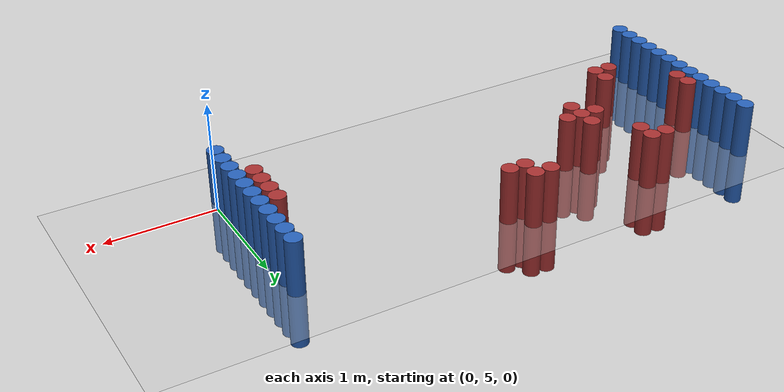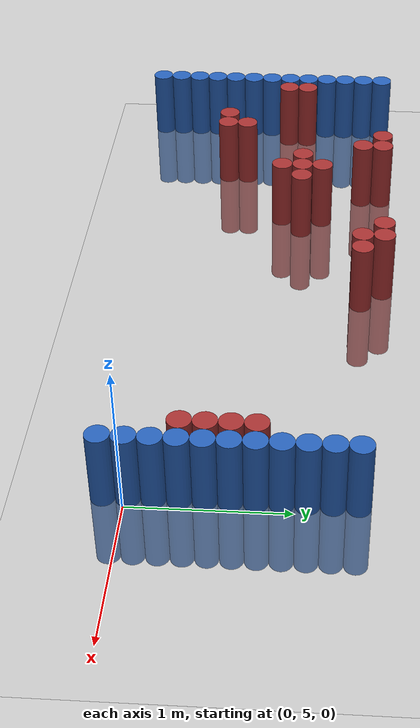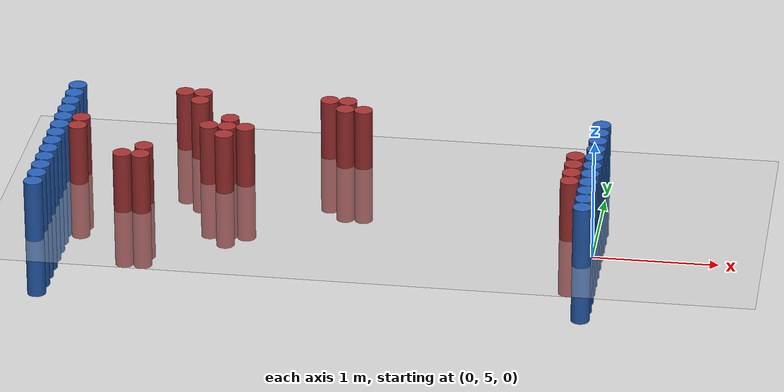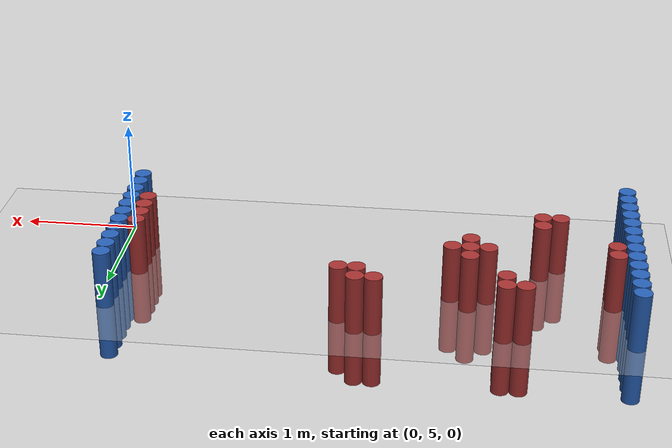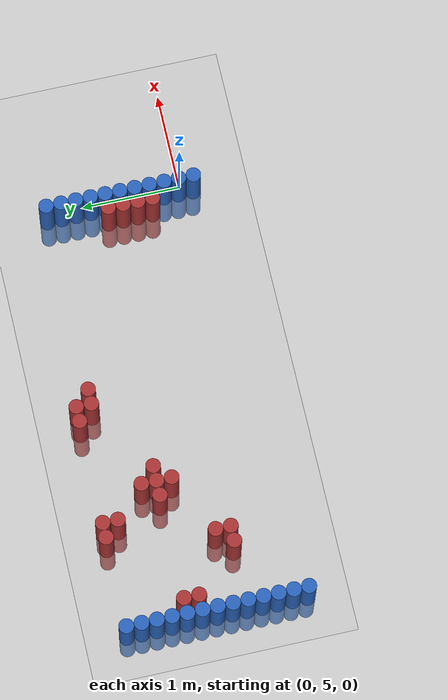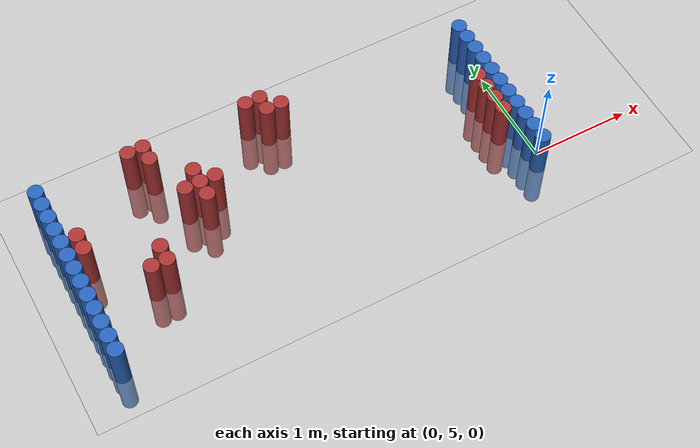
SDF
<sdf version="1.6">
 <world name="default">
  <model name="ground_plane">
   <static>1</static>
   <link name="link">
    <collision name="collision">
     <geometry><plane><normal>0 0 1</normal><size>100 100</size></plane></geometry>
     <surface><friction><ode><mu>100</mu><mu2>50</mu2></ode></friction></surface>
    </collision>
    <visual name="visual">
     <cast_shadows>0</cast_shadows>
     <geometry><plane><normal>0 0 1</normal><size>100 100</size></plane></geometry>
     <material>
      <script><uri>file://media/materials/scripts/gazebo.material</uri><name>Gazebo/Grey</name></script>
     </material>
    </visual>
   </link>
  </model>
  <model name="unit_cylinder_91">
   <static>1</static>
   <pose>-4.425000 4.725000 0.000000 0.000000 0.000000 0.000000</pose>
   <link name="link">
    <inertial>
     <mass>1</mass>
     <inertia><ixx>0.145833</ixx><ixy>0</ixy><ixz>0</ixz><iyy>0.145833</iyy><iyz>0</iyz><izz>0.125</izz></inertia>
    </inertial>
    <collision name="collision">
     <geometry><cylinder><radius>0.075000</radius><length>1</length></cylinder></geometry>
    </collision>
    <visual name="visual">
     <geometry><cylinder><radius>0.075000</radius><length>1</length></cylinder></geometry>
     <material>
      <ambient>0.152000 0.379000 0.720000 1</ambient>
      <diffuse>0.152000 0.379000 0.720000 1</diffuse>
     </material>
     <material>
      <script><name>Gazebo/Grey</name><uri>file://media/materials/scripts/gazebo.material</uri></script>
     </material>
    </visual>
   </link>
  </model>
  <model name="unit_cylinder_92">
   <static>1</static>
   <pose>-0.075000 4.875000 0.000000 0.000000 0.000000 0.000000</pose>
   <link name="link">
    <inertial>
     <mass>1</mass>
     <inertia><ixx>0.145833</ixx><ixy>0</ixy><ixz>0</ixz><iyy>0.145833</iyy><iyz>0</iyz><izz>0.125</izz></inertia>
    </inertial>
    <collision name="collision">
     <geometry><cylinder><radius>0.075000</radius><length>1</length></cylinder></geometry>
    </collision>
    <visual name="visual">
     <geometry><cylinder><radius>0.075000</radius><length>1</length></cylinder></geometry>
     <material>
      <ambient>0.152000 0.379000 0.720000 1</ambient>
      <diffuse>0.152000 0.379000 0.720000 1</diffuse>
     </material>
     <material>
      <script><name>Gazebo/Grey</name><uri>file://media/materials/scripts/gazebo.material</uri></script>
     </material>
    </visual>
   </link>
  </model>
  <model name="unit_cylinder_93">
   <static>1</static>
   <pose>-4.425000 4.875000 0.000000 0.000000 0.000000 0.000000</pose>
   <link name="link">
    <inertial>
     <mass>1</mass>
     <inertia><ixx>0.145833</ixx><ixy>0</ixy><ixz>0</ixz><iyy>0.145833</iyy><iyz>0</iyz><izz>0.125</izz></inertia>
    </inertial>
    <collision name="collision">
     <geometry><cylinder><radius>0.075000</radius><length>1</length></cylinder></geometry>
    </collision>
    <visual name="visual">
     <geometry><cylinder><radius>0.075000</radius><length>1</length></cylinder></geometry>
     <material>
      <ambient>0.152000 0.379000 0.720000 1</ambient>
      <diffuse>0.152000 0.379000 0.720000 1</diffuse>
     </material>
     <material>
      <script><name>Gazebo/Grey</name><uri>file://media/materials/scripts/gazebo.material</uri></script>
     </material>
    </visual>
   </link>
  </model>
  <model name="unit_cylinder_94">
   <static>1</static>
   <pose>-0.075000 5.025000 0.000000 0.000000 0.000000 0.000000</pose>
   <link name="link">
    <inertial>
     <mass>1</mass>
     <inertia><ixx>0.145833</ixx><ixy>0</ixy><ixz>0</ixz><iyy>0.145833</iyy><iyz>0</iyz><izz>0.125</izz></inertia>
    </inertial>
    <collision name="collision">
     <geometry><cylinder><radius>0.075000</radius><length>1</length></cylinder></geometry>
    </collision>
    <visual name="visual">
     <geometry><cylinder><radius>0.075000</radius><length>1</length></cylinder></geometry>
     <material>
      <ambient>0.152000 0.379000 0.720000 1</ambient>
      <diffuse>0.152000 0.379000 0.720000 1</diffuse>
     </material>
     <material>
      <script><name>Gazebo/Grey</name><uri>file://media/materials/scripts/gazebo.material</uri></script>
     </material>
    </visual>
   </link>
  </model>
  <model name="unit_cylinder_95">
   <static>1</static>
   <pose>-4.425000 5.025000 0.000000 0.000000 0.000000 0.000000</pose>
   <link name="link">
    <inertial>
     <mass>1</mass>
     <inertia><ixx>0.145833</ixx><ixy>0</ixy><ixz>0</ixz><iyy>0.145833</iyy><iyz>0</iyz><izz>0.125</izz></inertia>
    </inertial>
    <collision name="collision">
     <geometry><cylinder><radius>0.075000</radius><length>1</length></cylinder></geometry>
    </collision>
    <visual name="visual">
     <geometry><cylinder><radius>0.075000</radius><length>1</length></cylinder></geometry>
     <material>
      <ambient>0.152000 0.379000 0.720000 1</ambient>
      <diffuse>0.152000 0.379000 0.720000 1</diffuse>
     </material>
     <material>
      <script><name>Gazebo/Grey</name><uri>file://media/materials/scripts/gazebo.material</uri></script>
     </material>
    </visual>
   </link>
  </model>
  <model name="unit_cylinder_96">
   <static>1</static>
   <pose>-4.425000 5.175000 0.000000 0.000000 0.000000 0.000000</pose>
   <link name="link">
    <inertial>
     <mass>1</mass>
     <inertia><ixx>0.145833</ixx><ixy>0</ixy><ixz>0</ixz><iyy>0.145833</iyy><iyz>0</iyz><izz>0.125</izz></inertia>
    </inertial>
    <collision name="collision">
     <geometry><cylinder><radius>0.075000</radius><length>1</length></cylinder></geometry>
    </collision>
    <visual name="visual">
     <geometry><cylinder><radius>0.075000</radius><length>1</length></cylinder></geometry>
     <material>
      <ambient>0.152000 0.379000 0.720000 1</ambient>
      <diffuse>0.152000 0.379000 0.720000 1</diffuse>
     </material>
     <material>
      <script><name>Gazebo/Grey</name><uri>file://media/materials/scripts/gazebo.material</uri></script>
     </material>
    </visual>
   </link>
  </model>
  <model name="unit_cylinder_97">
   <static>1</static>
   <pose>-4.425000 5.325000 0.000000 0.000000 0.000000 0.000000</pose>
   <link name="link">
    <inertial>
     <mass>1</mass>
     <inertia><ixx>0.145833</ixx><ixy>0</ixy><ixz>0</ixz><iyy>0.145833</iyy><iyz>0</iyz><izz>0.125</izz></inertia>
    </inertial>
    <collision name="collision">
     <geometry><cylinder><radius>0.075000</radius><length>1</length></cylinder></geometry>
    </collision>
    <visual name="visual">
     <geometry><cylinder><radius>0.075000</radius><length>1</length></cylinder></geometry>
     <material>
      <ambient>0.152000 0.379000 0.720000 1</ambient>
      <diffuse>0.152000 0.379000 0.720000 1</diffuse>
     </material>
     <material>
      <script><name>Gazebo/Grey</name><uri>file://media/materials/scripts/gazebo.material</uri></script>
     </material>
    </visual>
   </link>
  </model>
  <model name="unit_cylinder_98">
   <static>1</static>
   <pose>-4.425000 5.475000 0.000000 0.000000 0.000000 0.000000</pose>
   <link name="link">
    <inertial>
     <mass>1</mass>
     <inertia><ixx>0.145833</ixx><ixy>0</ixy><ixz>0</ixz><iyy>0.145833</iyy><iyz>0</iyz><izz>0.125</izz></inertia>
    </inertial>
    <collision name="collision">
     <geometry><cylinder><radius>0.075000</radius><length>1</length></cylinder></geometry>
    </collision>
    <visual name="visual">
     <geometry><cylinder><radius>0.075000</radius><length>1</length></cylinder></geometry>
     <material>
      <ambient>0.152000 0.379000 0.720000 1</ambient>
      <diffuse>0.152000 0.379000 0.720000 1</diffuse>
     </material>
     <material>
      <script><name>Gazebo/Grey</name><uri>file://media/materials/scripts/gazebo.material</uri></script>
     </material>
    </visual>
   </link>
  </model>
  <model name="unit_cylinder_99">
   <static>1</static>
   <pose>-4.425000 5.625000 0.000000 0.000000 0.000000 0.000000</pose>
   <link name="link">
    <inertial>
     <mass>1</mass>
     <inertia><ixx>0.145833</ixx><ixy>0</ixy><ixz>0</ixz><iyy>0.145833</iyy><iyz>0</iyz><izz>0.125</izz></inertia>
    </inertial>
    <collision name="collision">
     <geometry><cylinder><radius>0.075000</radius><length>1</length></cylinder></geometry>
    </collision>
    <visual name="visual">
     <geometry><cylinder><radius>0.075000</radius><length>1</length></cylinder></geometry>
     <material>
      <ambient>0.152000 0.379000 0.720000 1</ambient>
      <diffuse>0.152000 0.379000 0.720000 1</diffuse>
     </material>
     <material>
      <script><name>Gazebo/Grey</name><uri>file://media/materials/scripts/gazebo.material</uri></script>
     </material>
    </visual>
   </link>
  </model>
  <model name="unit_cylinder_100">
   <static>1</static>
   <pose>-4.425000 5.775000 0.000000 0.000000 0.000000 0.000000</pose>
   <link name="link">
    <inertial>
     <mass>1</mass>
     <inertia><ixx>0.145833</ixx><ixy>0</ixy><ixz>0</ixz><iyy>0.145833</iyy><iyz>0</iyz><izz>0.125</izz></inertia>
    </inertial>
    <collision name="collision">
     <geometry><cylinder><radius>0.075000</radius><length>1</length></cylinder></geometry>
    </collision>
    <visual name="visual">
     <geometry><cylinder><radius>0.075000</radius><length>1</length></cylinder></geometry>
     <material>
      <ambient>0.152000 0.379000 0.720000 1</ambient>
      <diffuse>0.152000 0.379000 0.720000 1</diffuse>
     </material>
     <material>
      <script><name>Gazebo/Grey</name><uri>file://media/materials/scripts/gazebo.material</uri></script>
     </material>
    </visual>
   </link>
  </model>
  <model name="unit_cylinder_101">
   <static>1</static>
   <pose>-4.425000 5.925000 0.000000 0.000000 0.000000 0.000000</pose>
   <link name="link">
    <inertial>
     <mass>1</mass>
     <inertia><ixx>0.145833</ixx><ixy>0</ixy><ixz>0</ixz><iyy>0.145833</iyy><iyz>0</iyz><izz>0.125</izz></inertia>
    </inertial>
    <collision name="collision">
     <geometry><cylinder><radius>0.075000</radius><length>1</length></cylinder></geometry>
    </collision>
    <visual name="visual">
     <geometry><cylinder><radius>0.075000</radius><length>1</length></cylinder></geometry>
     <material>
      <ambient>0.152000 0.379000 0.720000 1</ambient>
      <diffuse>0.152000 0.379000 0.720000 1</diffuse>
     </material>
     <material>
      <script><name>Gazebo/Grey</name><uri>file://media/materials/scripts/gazebo.material</uri></script>
     </material>
    </visual>
   </link>
  </model>
  <model name="unit_cylinder_102">
   <static>1</static>
   <pose>-4.425000 6.075000 0.000000 0.000000 0.000000 0.000000</pose>
   <link name="link">
    <inertial>
     <mass>1</mass>
     <inertia><ixx>0.145833</ixx><ixy>0</ixy><ixz>0</ixz><iyy>0.145833</iyy><iyz>0</iyz><izz>0.125</izz></inertia>
    </inertial>
    <collision name="collision">
     <geometry><cylinder><radius>0.075000</radius><length>1</length></cylinder></geometry>
    </collision>
    <visual name="visual">
     <geometry><cylinder><radius>0.075000</radius><length>1</length></cylinder></geometry>
     <material>
      <ambient>0.152000 0.379000 0.720000 1</ambient>
      <diffuse>0.152000 0.379000 0.720000 1</diffuse>
     </material>
     <material>
      <script><name>Gazebo/Grey</name><uri>file://media/materials/scripts/gazebo.material</uri></script>
     </material>
    </visual>
   </link>
  </model>
  <model name="unit_cylinder_103">
   <static>1</static>
   <pose>-4.425000 6.225000 0.000000 0.000000 0.000000 0.000000</pose>
   <link name="link">
    <inertial>
     <mass>1</mass>
     <inertia><ixx>0.145833</ixx><ixy>0</ixy><ixz>0</ixz><iyy>0.145833</iyy><iyz>0</iyz><izz>0.125</izz></inertia>
    </inertial>
    <collision name="collision">
     <geometry><cylinder><radius>0.075000</radius><length>1</length></cylinder></geometry>
    </collision>
    <visual name="visual">
     <geometry><cylinder><radius>0.075000</radius><length>1</length></cylinder></geometry>
     <material>
      <ambient>0.152000 0.379000 0.720000 1</ambient>
      <diffuse>0.152000 0.379000 0.720000 1</diffuse>
     </material>
     <material>
      <script><name>Gazebo/Grey</name><uri>file://media/materials/scripts/gazebo.material</uri></script>
     </material>
    </visual>
   </link>
  </model>
  <model name="unit_cylinder_104">
   <static>1</static>
   <pose>-4.425000 6.375000 0.000000 0.000000 0.000000 0.000000</pose>
   <link name="link">
    <inertial>
     <mass>1</mass>
     <inertia><ixx>0.145833</ixx><ixy>0</ixy><ixz>0</ixz><iyy>0.145833</iyy><iyz>0</iyz><izz>0.125</izz></inertia>
    </inertial>
    <collision name="collision">
     <geometry><cylinder><radius>0.075000</radius><length>1</length></cylinder></geometry>
    </collision>
    <visual name="visual">
     <geometry><cylinder><radius>0.075000</radius><length>1</length></cylinder></geometry>
     <material>
      <ambient>0.152000 0.379000 0.720000 1</ambient>
      <diffuse>0.152000 0.379000 0.720000 1</diffuse>
     </material>
     <material>
      <script><name>Gazebo/Grey</name><uri>file://media/materials/scripts/gazebo.material</uri></script>
     </material>
    </visual>
   </link>
  </model>
  <model name="unit_cylinder_105">
   <static>1</static>
   <pose>-4.425000 6.525000 0.000000 0.000000 0.000000 0.000000</pose>
   <link name="link">
    <inertial>
     <mass>1</mass>
     <inertia><ixx>0.145833</ixx><ixy>0</ixy><ixz>0</ixz><iyy>0.145833</iyy><iyz>0</iyz><izz>0.125</izz></inertia>
    </inertial>
    <collision name="collision">
     <geometry><cylinder><radius>0.075000</radius><length>1</length></cylinder></geometry>
    </collision>
    <visual name="visual">
     <geometry><cylinder><radius>0.075000</radius><length>1</length></cylinder></geometry>
     <material>
      <ambient>0.152000 0.379000 0.720000 1</ambient>
      <diffuse>0.152000 0.379000 0.720000 1</diffuse>
     </material>
     <material>
      <script><name>Gazebo/Grey</name><uri>file://media/materials/scripts/gazebo.material</uri></script>
     </material>
    </visual>
   </link>
  </model>
  <model name="unit_cylinder_126">
   <static>1</static>
   <pose>-4.275000 5.775000 0.000000 0.000000 0.000000 0.000000</pose>
   <link name="link">
    <inertial>
     <mass>1</mass>
     <inertia><ixx>0.145833</ixx><ixy>0</ixy><ixz>0</ixz><iyy>0.145833</iyy><iyz>0</iyz><izz>0.125</izz></inertia>
    </inertial>
    <collision name="collision">
     <geometry><cylinder><radius>0.075000</radius><length>1</length></cylinder></geometry>
    </collision>
    <visual name="visual">
     <geometry><cylinder><radius>0.075000</radius><length>1</length></cylinder></geometry>
     <material>
      <ambient>0.648000 0.192000 0.192000 1</ambient>
      <diffuse>0.648000 0.192000 0.192000 1</diffuse>
     </material>
     <material>
      <script><name>Gazebo/Grey</name><uri>file://media/materials/scripts/gazebo.material</uri></script>
     </material>
    </visual>
   </link>
  </model>
  <model name="unit_cylinder_127">
   <static>1</static>
   <pose>-4.275000 5.925000 0.000000 0.000000 0.000000 0.000000</pose>
   <link name="link">
    <inertial>
     <mass>1</mass>
     <inertia><ixx>0.145833</ixx><ixy>0</ixy><ixz>0</ixz><iyy>0.145833</iyy><iyz>0</iyz><izz>0.125</izz></inertia>
    </inertial>
    <collision name="collision">
     <geometry><cylinder><radius>0.075000</radius><length>1</length></cylinder></geometry>
    </collision>
    <visual name="visual">
     <geometry><cylinder><radius>0.075000</radius><length>1</length></cylinder></geometry>
     <material>
      <ambient>0.648000 0.192000 0.192000 1</ambient>
      <diffuse>0.648000 0.192000 0.192000 1</diffuse>
     </material>
     <material>
      <script><name>Gazebo/Grey</name><uri>file://media/materials/scripts/gazebo.material</uri></script>
     </material>
    </visual>
   </link>
  </model>
  <model name="unit_cylinder_142">
   <static>1</static>
   <pose>-3.825000 5.325000 0.000000 0.000000 0.000000 0.000000</pose>
   <link name="link">
    <inertial>
     <mass>1</mass>
     <inertia><ixx>0.145833</ixx><ixy>0</ixy><ixz>0</ixz><iyy>0.145833</iyy><iyz>0</iyz><izz>0.125</izz></inertia>
    </inertial>
    <collision name="collision">
     <geometry><cylinder><radius>0.075000</radius><length>1</length></cylinder></geometry>
    </collision>
    <visual name="visual">
     <geometry><cylinder><radius>0.075000</radius><length>1</length></cylinder></geometry>
     <material>
      <ambient>0.648000 0.192000 0.192000 1</ambient>
      <diffuse>0.648000 0.192000 0.192000 1</diffuse>
     </material>
     <material>
      <script><name>Gazebo/Grey</name><uri>file://media/materials/scripts/gazebo.material</uri></script>
     </material>
    </visual>
   </link>
  </model>
  <model name="unit_cylinder_145">
   <static>1</static>
   <pose>-3.675000 5.325000 0.000000 0.000000 0.000000 0.000000</pose>
   <link name="link">
    <inertial>
     <mass>1</mass>
     <inertia><ixx>0.145833</ixx><ixy>0</ixy><ixz>0</ixz><iyy>0.145833</iyy><iyz>0</iyz><izz>0.125</izz></inertia>
    </inertial>
    <collision name="collision">
     <geometry><cylinder><radius>0.075000</radius><length>1</length></cylinder></geometry>
    </collision>
    <visual name="visual">
     <geometry><cylinder><radius>0.075000</radius><length>1</length></cylinder></geometry>
     <material>
      <ambient>0.648000 0.192000 0.192000 1</ambient>
      <diffuse>0.648000 0.192000 0.192000 1</diffuse>
     </material>
     <material>
      <script><name>Gazebo/Grey</name><uri>file://media/materials/scripts/gazebo.material</uri></script>
     </material>
    </visual>
   </link>
  </model>
  <model name="unit_cylinder_146">
   <static>1</static>
   <pose>-3.675000 5.475000 0.000000 0.000000 0.000000 0.000000</pose>
   <link name="link">
    <inertial>
     <mass>1</mass>
     <inertia><ixx>0.145833</ixx><ixy>0</ixy><ixz>0</ixz><iyy>0.145833</iyy><iyz>0</iyz><izz>0.125</izz></inertia>
    </inertial>
    <collision name="collision">
     <geometry><cylinder><radius>0.075000</radius><length>1</length></cylinder></geometry>
    </collision>
    <visual name="visual">
     <geometry><cylinder><radius>0.075000</radius><length>1</length></cylinder></geometry>
     <material>
      <ambient>0.648000 0.192000 0.192000 1</ambient>
      <diffuse>0.648000 0.192000 0.192000 1</diffuse>
     </material>
     <material>
      <script><name>Gazebo/Grey</name><uri>file://media/materials/scripts/gazebo.material</uri></script>
     </material>
    </visual>
   </link>
  </model>
  <model name="unit_cylinder_149">
   <static>1</static>
   <pose>-3.525000 6.525000 0.000000 0.000000 0.000000 0.000000</pose>
   <link name="link">
    <inertial>
     <mass>1</mass>
     <inertia><ixx>0.145833</ixx><ixy>0</ixy><ixz>0</ixz><iyy>0.145833</iyy><iyz>0</iyz><izz>0.125</izz></inertia>
    </inertial>
    <collision name="collision">
     <geometry><cylinder><radius>0.075000</radius><length>1</length></cylinder></geometry>
    </collision>
    <visual name="visual">
     <geometry><cylinder><radius>0.075000</radius><length>1</length></cylinder></geometry>
     <material>
      <ambient>0.648000 0.192000 0.192000 1</ambient>
      <diffuse>0.648000 0.192000 0.192000 1</diffuse>
     </material>
     <material>
      <script><name>Gazebo/Grey</name><uri>file://media/materials/scripts/gazebo.material</uri></script>
     </material>
    </visual>
   </link>
  </model>
  <model name="unit_cylinder_152">
   <static>1</static>
   <pose>-3.375000 6.375000 0.000000 0.000000 0.000000 0.000000</pose>
   <link name="link">
    <inertial>
     <mass>1</mass>
     <inertia><ixx>0.145833</ixx><ixy>0</ixy><ixz>0</ixz><iyy>0.145833</iyy><iyz>0</iyz><izz>0.125</izz></inertia>
    </inertial>
    <collision name="collision">
     <geometry><cylinder><radius>0.075000</radius><length>1</length></cylinder></geometry>
    </collision>
    <visual name="visual">
     <geometry><cylinder><radius>0.075000</radius><length>1</length></cylinder></geometry>
     <material>
      <ambient>0.648000 0.192000 0.192000 1</ambient>
      <diffuse>0.648000 0.192000 0.192000 1</diffuse>
     </material>
     <material>
      <script><name>Gazebo/Grey</name><uri>file://media/materials/scripts/gazebo.material</uri></script>
     </material>
    </visual>
   </link>
  </model>
  <model name="unit_cylinder_153">
   <static>1</static>
   <pose>-3.375000 6.525000 0.000000 0.000000 0.000000 0.000000</pose>
   <link name="link">
    <inertial>
     <mass>1</mass>
     <inertia><ixx>0.145833</ixx><ixy>0</ixy><ixz>0</ixz><iyy>0.145833</iyy><iyz>0</iyz><izz>0.125</izz></inertia>
    </inertial>
    <collision name="collision">
     <geometry><cylinder><radius>0.075000</radius><length>1</length></cylinder></geometry>
    </collision>
    <visual name="visual">
     <geometry><cylinder><radius>0.075000</radius><length>1</length></cylinder></geometry>
     <material>
      <ambient>0.648000 0.192000 0.192000 1</ambient>
      <diffuse>0.648000 0.192000 0.192000 1</diffuse>
     </material>
     <material>
      <script><name>Gazebo/Grey</name><uri>file://media/materials/scripts/gazebo.material</uri></script>
     </material>
    </visual>
   </link>
  </model>
  <model name="unit_cylinder_157">
   <static>1</static>
   <pose>-3.225000 5.925000 0.000000 0.000000 0.000000 0.000000</pose>
   <link name="link">
    <inertial>
     <mass>1</mass>
     <inertia><ixx>0.145833</ixx><ixy>0</ixy><ixz>0</ixz><iyy>0.145833</iyy><iyz>0</iyz><izz>0.125</izz></inertia>
    </inertial>
    <collision name="collision">
     <geometry><cylinder><radius>0.075000</radius><length>1</length></cylinder></geometry>
    </collision>
    <visual name="visual">
     <geometry><cylinder><radius>0.075000</radius><length>1</length></cylinder></geometry>
     <material>
      <ambient>0.648000 0.192000 0.192000 1</ambient>
      <diffuse>0.648000 0.192000 0.192000 1</diffuse>
     </material>
     <material>
      <script><name>Gazebo/Grey</name><uri>file://media/materials/scripts/gazebo.material</uri></script>
     </material>
    </visual>
   </link>
  </model>
  <model name="unit_cylinder_160">
   <static>1</static>
   <pose>-3.075000 5.775000 0.000000 0.000000 0.000000 0.000000</pose>
   <link name="link">
    <inertial>
     <mass>1</mass>
     <inertia><ixx>0.145833</ixx><ixy>0</ixy><ixz>0</ixz><iyy>0.145833</iyy><iyz>0</iyz><izz>0.125</izz></inertia>
    </inertial>
    <collision name="collision">
     <geometry><cylinder><radius>0.075000</radius><length>1</length></cylinder></geometry>
    </collision>
    <visual name="visual">
     <geometry><cylinder><radius>0.075000</radius><length>1</length></cylinder></geometry>
     <material>
      <ambient>0.648000 0.192000 0.192000 1</ambient>
      <diffuse>0.648000 0.192000 0.192000 1</diffuse>
     </material>
     <material>
      <script><name>Gazebo/Grey</name><uri>file://media/materials/scripts/gazebo.material</uri></script>
     </material>
    </visual>
   </link>
  </model>
  <model name="unit_cylinder_161">
   <static>1</static>
   <pose>-3.075000 5.925000 0.000000 0.000000 0.000000 0.000000</pose>
   <link name="link">
    <inertial>
     <mass>1</mass>
     <inertia><ixx>0.145833</ixx><ixy>0</ixy><ixz>0</ixz><iyy>0.145833</iyy><iyz>0</iyz><izz>0.125</izz></inertia>
    </inertial>
    <collision name="collision">
     <geometry><cylinder><radius>0.075000</radius><length>1</length></cylinder></geometry>
    </collision>
    <visual name="visual">
     <geometry><cylinder><radius>0.075000</radius><length>1</length></cylinder></geometry>
     <material>
      <ambient>0.648000 0.192000 0.192000 1</ambient>
      <diffuse>0.648000 0.192000 0.192000 1</diffuse>
     </material>
     <material>
      <script><name>Gazebo/Grey</name><uri>file://media/materials/scripts/gazebo.material</uri></script>
     </material>
    </visual>
   </link>
  </model>
  <model name="unit_cylinder_162">
   <static>1</static>
   <pose>-3.075000 6.075000 0.000000 0.000000 0.000000 0.000000</pose>
   <link name="link">
    <inertial>
     <mass>1</mass>
     <inertia><ixx>0.145833</ixx><ixy>0</ixy><ixz>0</ixz><iyy>0.145833</iyy><iyz>0</iyz><izz>0.125</izz></inertia>
    </inertial>
    <collision name="collision">
     <geometry><cylinder><radius>0.075000</radius><length>1</length></cylinder></geometry>
    </collision>
    <visual name="visual">
     <geometry><cylinder><radius>0.075000</radius><length>1</length></cylinder></geometry>
     <material>
      <ambient>0.648000 0.192000 0.192000 1</ambient>
      <diffuse>0.648000 0.192000 0.192000 1</diffuse>
     </material>
     <material>
      <script><name>Gazebo/Grey</name><uri>file://media/materials/scripts/gazebo.material</uri></script>
     </material>
    </visual>
   </link>
  </model>
  <model name="unit_cylinder_164">
   <static>1</static>
   <pose>-2.925000 5.925000 0.000000 0.000000 0.000000 0.000000</pose>
   <link name="link">
    <inertial>
     <mass>1</mass>
     <inertia><ixx>0.145833</ixx><ixy>0</ixy><ixz>0</ixz><iyy>0.145833</iyy><iyz>0</iyz><izz>0.125</izz></inertia>
    </inertial>
    <collision name="collision">
     <geometry><cylinder><radius>0.075000</radius><length>1</length></cylinder></geometry>
    </collision>
    <visual name="visual">
     <geometry><cylinder><radius>0.075000</radius><length>1</length></cylinder></geometry>
     <material>
      <ambient>0.648000 0.192000 0.192000 1</ambient>
      <diffuse>0.648000 0.192000 0.192000 1</diffuse>
     </material>
     <material>
      <script><name>Gazebo/Grey</name><uri>file://media/materials/scripts/gazebo.material</uri></script>
     </material>
    </visual>
   </link>
  </model>
  <model name="unit_cylinder_174">
   <static>1</static>
   <pose>-2.325000 6.525000 0.000000 0.000000 0.000000 0.000000</pose>
   <link name="link">
    <inertial>
     <mass>1</mass>
     <inertia><ixx>0.145833</ixx><ixy>0</ixy><ixz>0</ixz><iyy>0.145833</iyy><iyz>0</iyz><izz>0.125</izz></inertia>
    </inertial>
    <collision name="collision">
     <geometry><cylinder><radius>0.075000</radius><length>1</length></cylinder></geometry>
    </collision>
    <visual name="visual">
     <geometry><cylinder><radius>0.075000</radius><length>1</length></cylinder></geometry>
     <material>
      <ambient>0.648000 0.192000 0.192000 1</ambient>
      <diffuse>0.648000 0.192000 0.192000 1</diffuse>
     </material>
     <material>
      <script><name>Gazebo/Grey</name><uri>file://media/materials/scripts/gazebo.material</uri></script>
     </material>
    </visual>
   </link>
  </model>
  <model name="unit_cylinder_177">
   <static>1</static>
   <pose>-2.175000 6.375000 0.000000 0.000000 0.000000 0.000000</pose>
   <link name="link">
    <inertial>
     <mass>1</mass>
     <inertia><ixx>0.145833</ixx><ixy>0</ixy><ixz>0</ixz><iyy>0.145833</iyy><iyz>0</iyz><izz>0.125</izz></inertia>
    </inertial>
    <collision name="collision">
     <geometry><cylinder><radius>0.075000</radius><length>1</length></cylinder></geometry>
    </collision>
    <visual name="visual">
     <geometry><cylinder><radius>0.075000</radius><length>1</length></cylinder></geometry>
     <material>
      <ambient>0.648000 0.192000 0.192000 1</ambient>
      <diffuse>0.648000 0.192000 0.192000 1</diffuse>
     </material>
     <material>
      <script><name>Gazebo/Grey</name><uri>file://media/materials/scripts/gazebo.material</uri></script>
     </material>
    </visual>
   </link>
  </model>
  <model name="unit_cylinder_178">
   <static>1</static>
   <pose>-2.175000 6.525000 0.000000 0.000000 0.000000 0.000000</pose>
   <link name="link">
    <inertial>
     <mass>1</mass>
     <inertia><ixx>0.145833</ixx><ixy>0</ixy><ixz>0</ixz><iyy>0.145833</iyy><iyz>0</iyz><izz>0.125</izz></inertia>
    </inertial>
    <collision name="collision">
     <geometry><cylinder><radius>0.075000</radius><length>1</length></cylinder></geometry>
    </collision>
    <visual name="visual">
     <geometry><cylinder><radius>0.075000</radius><length>1</length></cylinder></geometry>
     <material>
      <ambient>0.648000 0.192000 0.192000 1</ambient>
      <diffuse>0.648000 0.192000 0.192000 1</diffuse>
     </material>
     <material>
      <script><name>Gazebo/Grey</name><uri>file://media/materials/scripts/gazebo.material</uri></script>
     </material>
    </visual>
   </link>
  </model>
  <model name="unit_cylinder_180">
   <static>1</static>
   <pose>-2.025000 6.375000 0.000000 0.000000 0.000000 0.000000</pose>
   <link name="link">
    <inertial>
     <mass>1</mass>
     <inertia><ixx>0.145833</ixx><ixy>0</ixy><ixz>0</ixz><iyy>0.145833</iyy><iyz>0</iyz><izz>0.125</izz></inertia>
    </inertial>
    <collision name="collision">
     <geometry><cylinder><radius>0.075000</radius><length>1</length></cylinder></geometry>
    </collision>
    <visual name="visual">
     <geometry><cylinder><radius>0.075000</radius><length>1</length></cylinder></geometry>
     <material>
      <ambient>0.648000 0.192000 0.192000 1</ambient>
      <diffuse>0.648000 0.192000 0.192000 1</diffuse>
     </material>
     <material>
      <script><name>Gazebo/Grey</name><uri>file://media/materials/scripts/gazebo.material</uri></script>
     </material>
    </visual>
   </link>
  </model>
  <model name="unit_cylinder_188">
   <static>1</static>
   <pose>-0.225000 5.325000 0.000000 0.000000 0.000000 0.000000</pose>
   <link name="link">
    <inertial>
     <mass>1</mass>
     <inertia><ixx>0.145833</ixx><ixy>0</ixy><ixz>0</ixz><iyy>0.145833</iyy><iyz>0</iyz><izz>0.125</izz></inertia>
    </inertial>
    <collision name="collision">
     <geometry><cylinder><radius>0.075000</radius><length>1</length></cylinder></geometry>
    </collision>
    <visual name="visual">
     <geometry><cylinder><radius>0.075000</radius><length>1</length></cylinder></geometry>
     <material>
      <ambient>0.648000 0.192000 0.192000 1</ambient>
      <diffuse>0.648000 0.192000 0.192000 1</diffuse>
     </material>
     <material>
      <script><name>Gazebo/Grey</name><uri>file://media/materials/scripts/gazebo.material</uri></script>
     </material>
    </visual>
   </link>
  </model>
  <model name="unit_cylinder_189">
   <static>1</static>
   <pose>-0.225000 5.475000 0.000000 0.000000 0.000000 0.000000</pose>
   <link name="link">
    <inertial>
     <mass>1</mass>
     <inertia><ixx>0.145833</ixx><ixy>0</ixy><ixz>0</ixz><iyy>0.145833</iyy><iyz>0</iyz><izz>0.125</izz></inertia>
    </inertial>
    <collision name="collision">
     <geometry><cylinder><radius>0.075000</radius><length>1</length></cylinder></geometry>
    </collision>
    <visual name="visual">
     <geometry><cylinder><radius>0.075000</radius><length>1</length></cylinder></geometry>
     <material>
      <ambient>0.648000 0.192000 0.192000 1</ambient>
      <diffuse>0.648000 0.192000 0.192000 1</diffuse>
     </material>
     <material>
      <script><name>Gazebo/Grey</name><uri>file://media/materials/scripts/gazebo.material</uri></script>
     </material>
    </visual>
   </link>
  </model>
  <model name="unit_cylinder_190">
   <static>1</static>
   <pose>-0.225000 5.625000 0.000000 0.000000 0.000000 0.000000</pose>
   <link name="link">
    <inertial>
     <mass>1</mass>
     <inertia><ixx>0.145833</ixx><ixy>0</ixy><ixz>0</ixz><iyy>0.145833</iyy><iyz>0</iyz><izz>0.125</izz></inertia>
    </inertial>
    <collision name="collision">
     <geometry><cylinder><radius>0.075000</radius><length>1</length></cylinder></geometry>
    </collision>
    <visual name="visual">
     <geometry><cylinder><radius>0.075000</radius><length>1</length></cylinder></geometry>
     <material>
      <ambient>0.648000 0.192000 0.192000 1</ambient>
      <diffuse>0.648000 0.192000 0.192000 1</diffuse>
     </material>
     <material>
      <script><name>Gazebo/Grey</name><uri>file://media/materials/scripts/gazebo.material</uri></script>
     </material>
    </visual>
   </link>
  </model>
  <model name="unit_cylinder_191">
   <static>1</static>
   <pose>-0.225000 5.775000 0.000000 0.000000 0.000000 0.000000</pose>
   <link name="link">
    <inertial>
     <mass>1</mass>
     <inertia><ixx>0.145833</ixx><ixy>0</ixy><ixz>0</ixz><iyy>0.145833</iyy><iyz>0</iyz><izz>0.125</izz></inertia>
    </inertial>
    <collision name="collision">
     <geometry><cylinder><radius>0.075000</radius><length>1</length></cylinder></geometry>
    </collision>
    <visual name="visual">
     <geometry><cylinder><radius>0.075000</radius><length>1</length></cylinder></geometry>
     <material>
      <ambient>0.648000 0.192000 0.192000 1</ambient>
      <diffuse>0.648000 0.192000 0.192000 1</diffuse>
     </material>
     <material>
      <script><name>Gazebo/Grey</name><uri>file://media/materials/scripts/gazebo.material</uri></script>
     </material>
    </visual>
   </link>
  </model>
  <model name="unit_cylinder_197">
   <static>1</static>
   <pose>-0.075000 5.175000 0.000000 0.000000 0.000000 0.000000</pose>
   <link name="link">
    <inertial>
     <mass>1</mass>
     <inertia><ixx>0.145833</ixx><ixy>0</ixy><ixz>0</ixz><iyy>0.145833</iyy><iyz>0</iyz><izz>0.125</izz></inertia>
    </inertial>
    <collision name="collision">
     <geometry><cylinder><radius>0.075000</radius><length>1</length></cylinder></geometry>
    </collision>
    <visual name="visual">
     <geometry><cylinder><radius>0.075000</radius><length>1</length></cylinder></geometry>
     <material>
      <ambient>0.152000 0.379000 0.720000 1</ambient>
      <diffuse>0.152000 0.379000 0.720000 1</diffuse>
     </material>
     <material>
      <script><name>Gazebo/Grey</name><uri>file://media/materials/scripts/gazebo.material</uri></script>
     </material>
    </visual>
   </link>
  </model>
  <model name="unit_cylinder_198">
   <static>1</static>
   <pose>-0.075000 5.325000 0.000000 0.000000 0.000000 0.000000</pose>
   <link name="link">
    <inertial>
     <mass>1</mass>
     <inertia><ixx>0.145833</ixx><ixy>0</ixy><ixz>0</ixz><iyy>0.145833</iyy><iyz>0</iyz><izz>0.125</izz></inertia>
    </inertial>
    <collision name="collision">
     <geometry><cylinder><radius>0.075000</radius><length>1</length></cylinder></geometry>
    </collision>
    <visual name="visual">
     <geometry><cylinder><radius>0.075000</radius><length>1</length></cylinder></geometry>
     <material>
      <ambient>0.152000 0.379000 0.720000 1</ambient>
      <diffuse>0.152000 0.379000 0.720000 1</diffuse>
     </material>
     <material>
      <script><name>Gazebo/Grey</name><uri>file://media/materials/scripts/gazebo.material</uri></script>
     </material>
    </visual>
   </link>
  </model>
  <model name="unit_cylinder_199">
   <static>1</static>
   <pose>-0.075000 5.475000 0.000000 0.000000 0.000000 0.000000</pose>
   <link name="link">
    <inertial>
     <mass>1</mass>
     <inertia><ixx>0.145833</ixx><ixy>0</ixy><ixz>0</ixz><iyy>0.145833</iyy><iyz>0</iyz><izz>0.125</izz></inertia>
    </inertial>
    <collision name="collision">
     <geometry><cylinder><radius>0.075000</radius><length>1</length></cylinder></geometry>
    </collision>
    <visual name="visual">
     <geometry><cylinder><radius>0.075000</radius><length>1</length></cylinder></geometry>
     <material>
      <ambient>0.152000 0.379000 0.720000 1</ambient>
      <diffuse>0.152000 0.379000 0.720000 1</diffuse>
     </material>
     <material>
      <script><name>Gazebo/Grey</name><uri>file://media/materials/scripts/gazebo.material</uri></script>
     </material>
    </visual>
   </link>
  </model>
  <model name="unit_cylinder_200">
   <static>1</static>
   <pose>-0.075000 5.625000 0.000000 0.000000 0.000000 0.000000</pose>
   <link name="link">
    <inertial>
     <mass>1</mass>
     <inertia><ixx>0.145833</ixx><ixy>0</ixy><ixz>0</ixz><iyy>0.145833</iyy><iyz>0</iyz><izz>0.125</izz></inertia>
    </inertial>
    <collision name="collision">
     <geometry><cylinder><radius>0.075000</radius><length>1</length></cylinder></geometry>
    </collision>
    <visual name="visual">
     <geometry><cylinder><radius>0.075000</radius><length>1</length></cylinder></geometry>
     <material>
      <ambient>0.152000 0.379000 0.720000 1</ambient>
      <diffuse>0.152000 0.379000 0.720000 1</diffuse>
     </material>
     <material>
      <script><name>Gazebo/Grey</name><uri>file://media/materials/scripts/gazebo.material</uri></script>
     </material>
    </visual>
   </link>
  </model>
  <model name="unit_cylinder_201">
   <static>1</static>
   <pose>-0.075000 5.775000 0.000000 0.000000 0.000000 0.000000</pose>
   <link name="link">
    <inertial>
     <mass>1</mass>
     <inertia><ixx>0.145833</ixx><ixy>0</ixy><ixz>0</ixz><iyy>0.145833</iyy><iyz>0</iyz><izz>0.125</izz></inertia>
    </inertial>
    <collision name="collision">
     <geometry><cylinder><radius>0.075000</radius><length>1</length></cylinder></geometry>
    </collision>
    <visual name="visual">
     <geometry><cylinder><radius>0.075000</radius><length>1</length></cylinder></geometry>
     <material>
      <ambient>0.152000 0.379000 0.720000 1</ambient>
      <diffuse>0.152000 0.379000 0.720000 1</diffuse>
     </material>
     <material>
      <script><name>Gazebo/Grey</name><uri>file://media/materials/scripts/gazebo.material</uri></script>
     </material>
    </visual>
   </link>
  </model>
  <model name="unit_cylinder_202">
   <static>1</static>
   <pose>-0.075000 5.925000 0.000000 0.000000 0.000000 0.000000</pose>
   <link name="link">
    <inertial>
     <mass>1</mass>
     <inertia><ixx>0.145833</ixx><ixy>0</ixy><ixz>0</ixz><iyy>0.145833</iyy><iyz>0</iyz><izz>0.125</izz></inertia>
    </inertial>
    <collision name="collision">
     <geometry><cylinder><radius>0.075000</radius><length>1</length></cylinder></geometry>
    </collision>
    <visual name="visual">
     <geometry><cylinder><radius>0.075000</radius><length>1</length></cylinder></geometry>
     <material>
      <ambient>0.152000 0.379000 0.720000 1</ambient>
      <diffuse>0.152000 0.379000 0.720000 1</diffuse>
     </material>
     <material>
      <script><name>Gazebo/Grey</name><uri>file://media/materials/scripts/gazebo.material</uri></script>
     </material>
    </visual>
   </link>
  </model>
  <model name="unit_cylinder_203">
   <static>1</static>
   <pose>-0.075000 6.075000 0.000000 0.000000 0.000000 0.000000</pose>
   <link name="link">
    <inertial>
     <mass>1</mass>
     <inertia><ixx>0.145833</ixx><ixy>0</ixy><ixz>0</ixz><iyy>0.145833</iyy><iyz>0</iyz><izz>0.125</izz></inertia>
    </inertial>
    <collision name="collision">
     <geometry><cylinder><radius>0.075000</radius><length>1</length></cylinder></geometry>
    </collision>
    <visual name="visual">
     <geometry><cylinder><radius>0.075000</radius><length>1</length></cylinder></geometry>
     <material>
      <ambient>0.152000 0.379000 0.720000 1</ambient>
      <diffuse>0.152000 0.379000 0.720000 1</diffuse>
     </material>
     <material>
      <script><name>Gazebo/Grey</name><uri>file://media/materials/scripts/gazebo.material</uri></script>
     </material>
    </visual>
   </link>
  </model>
  <model name="unit_cylinder_204">
   <static>1</static>
   <pose>-0.075000 6.225000 0.000000 0.000000 0.000000 0.000000</pose>
   <link name="link">
    <inertial>
     <mass>1</mass>
     <inertia><ixx>0.145833</ixx><ixy>0</ixy><ixz>0</ixz><iyy>0.145833</iyy><iyz>0</iyz><izz>0.125</izz></inertia>
    </inertial>
    <collision name="collision">
     <geometry><cylinder><radius>0.075000</radius><length>1</length></cylinder></geometry>
    </collision>
    <visual name="visual">
     <geometry><cylinder><radius>0.075000</radius><length>1</length></cylinder></geometry>
     <material>
      <ambient>0.152000 0.379000 0.720000 1</ambient>
      <diffuse>0.152000 0.379000 0.720000 1</diffuse>
     </material>
     <material>
      <script><name>Gazebo/Grey</name><uri>file://media/materials/scripts/gazebo.material</uri></script>
     </material>
    </visual>
   </link>
  </model>
  <model name="unit_cylinder_205">
   <static>1</static>
   <pose>-0.075000 6.375000 0.000000 0.000000 0.000000 0.000000</pose>
   <link name="link">
    <inertial>
     <mass>1</mass>
     <inertia><ixx>0.145833</ixx><ixy>0</ixy><ixz>0</ixz><iyy>0.145833</iyy><iyz>0</iyz><izz>0.125</izz></inertia>
    </inertial>
    <collision name="collision">
     <geometry><cylinder><radius>0.075000</radius><length>1</length></cylinder></geometry>
    </collision>
    <visual name="visual">
     <geometry><cylinder><radius>0.075000</radius><length>1</length></cylinder></geometry>
     <material>
      <ambient>0.152000 0.379000 0.720000 1</ambient>
      <diffuse>0.152000 0.379000 0.720000 1</diffuse>
     </material>
     <material>
      <script><name>Gazebo/Grey</name><uri>file://media/materials/scripts/gazebo.material</uri></script>
     </material>
    </visual>
   </link>
  </model>
 </world>
</sdf>
